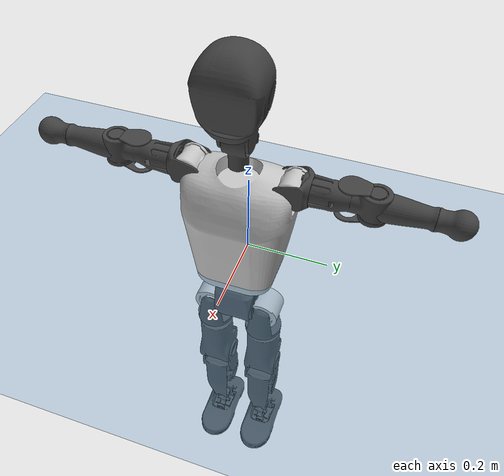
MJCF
<mujoco model="T1">
  <compiler angle="radian" assetdir="assets" balanceinertia="true" inertiafromgeom="false"/>

  <option timestep="0.005" density="1.2" viscosity="2e-05"/>

  <size nkey="1"/>

  <visual>
    <quality shadowsize="8192"/>
    <map shadowclip="0.5"/>
  </visual>

  <default>
    <default class="/">
      <joint armature="0.01" damping="0.01" frictionloss="0.1"/>
      <geom contype="0" conaffinity="0" group="1" solref="-1000 -80"/>
      <site size="0.01 0.005 0.005" group="5"/>
      <general forcelimited="true" biastype="affine" gainprm="25" biasprm="0 -25 -0.6"/>
      <default class="t1">
        <geom rgba="0.25 0.25 0.25 1"/>
        <default class="visual">
          <geom type="mesh" group="2"/>
        </default>
        <default class="collision">
          <geom group="3"/>
        </default>
        <default class="foot">
          <geom size="0.1115 0.05 0.015" type="box" condim="6" group="4" priority="1" solimp="0.015 1 0.015"/>
        </default>
        <default class="reward_collision_sphere">
          <geom group="5" rgba="1 0 0 1"/>
        </default>
      </default>
    </default>
  </default>

  <asset>
    <texture type="skybox" colorspace="auto" name="//unnamed_texture_0" builtin="gradient" rgb1="0.95 0.95 0.95" rgb2="0.95 0.95 0.95" width="100" height="600"/>
    <texture type="2d" colorspace="auto" name="texplane" builtin="checker" rgb1="0.345 0.575 0.748" rgb2="0.345 0.575 0.748" markrgb="1 1 1" width="512" height="512"/>
    <material name="MatPlane" class="/" texture="texplane" texuniform="true" texrepeat="2 2" specular="0.9"/>
    <mesh name="Trunk" class="/" file="Trunk.stl"/>
    <mesh name="H1" class="/" file="H1.stl"/>
    <mesh name="H2" class="/" file="H2.stl"/>
    <mesh name="AL1" class="/" file="AL1.stl"/>
    <mesh name="AL2" class="/" file="AL2.stl"/>
    <mesh name="AL3" class="/" file="AL3.stl"/>
    <mesh name="left_hand_link" class="/" file="left_hand_link.stl"/>
    <mesh name="AR1" class="/" file="AR1.stl"/>
    <mesh name="AR2" class="/" file="AR2.stl"/>
    <mesh name="AR3" class="/" file="AR3.stl"/>
    <mesh name="right_hand_link" class="/" file="right_hand_link.stl"/>
    <mesh name="Waist" class="/" file="Waist.stl"/>
    <mesh name="Hip_Pitch_Left" class="/" file="Hip_Pitch_Left.stl"/>
    <mesh name="Hip_Roll_Left" class="/" file="Hip_Roll_Left.stl"/>
    <mesh name="Hip_Yaw_Left" class="/" file="Hip_Yaw_Left.stl"/>
    <mesh name="Shank_Left" class="/" file="Shank_Left.stl"/>
    <mesh name="Ankle_Cross_Left" class="/" file="Ankle_Cross_Left.stl"/>
    <mesh name="left_foot_link" class="/" file="left_foot_link.stl"/>
    <mesh name="Hip_Pitch_Right" class="/" file="Hip_Pitch_Right.stl"/>
    <mesh name="Hip_Roll_Right" class="/" file="Hip_Roll_Right.stl"/>
    <mesh name="Hip_Yaw_Right" class="/" file="Hip_Yaw_Right.stl"/>
    <mesh name="Shank_Right" class="/" file="Shank_Right.stl"/>
    <mesh name="Ankle_Cross_Right" class="/" file="Ankle_Cross_Right.stl"/>
    <mesh name="right_foot_link" class="/" file="right_foot_link.stl"/>
  </asset>

  <worldbody>
    <geom name="floor" class="/" size="100 100 0.125" type="plane" group="0" material="MatPlane"/>
    <light name="toplight_shadow" class="/" pos="0 0 5" dir="0.0990148 0.0990148 -0.990148" type="directional" ambient="0.04 0.04 0.04" diffuse="0.55 0.55 0.55" specular="0.12 0.12 0.12"/>
    <light name="toplight_fill" class="/" pos="0 0 5" dir="0.0990148 0.0990148 -0.990148" type="directional" castshadow="false" ambient="0.04 0.04 0.04" diffuse="0.3 0.3 0.3" specular="0.08 0.08 0.08"/>
    <body name="trunk" childclass="t1" pos="0.00029612 0.00047149 0.00242421" quat="1 -7.79953e-05 -0.000202236 0.000129784">
      <inertial pos="0.0496333 -0.00353983 0.120436" quat="0.999785 -0.0110702 -0.0174422 0.0018665" mass="8.19998" diaginertia="0.0539753 0.00776405 0.109805"/>
      <joint name="//unnamed_joint_0" type="free" armature="0" damping="0" frictionloss="0"/>
      <geom name="//unnamed_geom_1" class="visual" rgba="0.76 0.76 0.76 1" mesh="Trunk"/>
      <geom name="//unnamed_geom_2" class="collision" size="0.0673494 0.0897993 0.134699" pos="0.0539712 0 0.138449" type="box"/>
      <geom name="//unnamed_geom_3" class="reward_collision_sphere" size="0.103269" pos="0.0539712 0 0.115374"/>
      <geom name="//unnamed_geom_4" class="reward_collision_sphere" size="0.0134699" pos="0.0539712 0.0544608 0"/>
      <geom name="//unnamed_geom_5" class="reward_collision_sphere" size="0.0134699" pos="0.0539712 -0.0544608 0"/>
      <geom name="//unnamed_geom_6" class="reward_collision_sphere" size="0.0134699" pos="0.0539712 0.0685565 0.207674"/>
      <geom name="//unnamed_geom_7" class="reward_collision_sphere" size="0.0134699" pos="0.0539712 -0.0685565 0.207674"/>
      <site name="imu" pos="-0.000438328 0.00873756 -0.0123109" size="0.00897993"/>
      <camera name="track" pos="0 -1.28143 0" quat="0.707107 0.707107 0 0" mode="trackcom"/>
      <camera name="ego_camera" pos="0.109741 0 0.484572" quat="-0.5 -0.5 0.5 0.5"/>
      <body name="H1" pos="0.0553099 -0.00333885 0.278343" quat="1 0.000446019 -0.000343626 0.000742084">
        <inertial pos="-0.000372401 -0.00141516 0.0686717" quat="0.762941 -0.00459621 0.00603158 0.646424" mass="0.30963" diaginertia="0.000134659 2.44782e-05 0.000294354"/>
        <joint name="AAHead_yaw" pos="0 0 0" axis="7.5622e-05 -0.0111797 0.999938" stiffness="0.00256616" range="-1.52029 1.58396" armature="0.00939568" damping="0" frictionloss="0.0772288"/>
        <geom name="//unnamed_geom_8" class="visual" mesh="H1"/>
        <body name="H2" pos="-0.00017528 -0.00126415 0.0716006" quat="1 -5.40191e-06 -2.0544e-06 9.7553e-06">
          <inertial pos="0.00378168 0.00302529 0.116172" quat="0.98921 0.0945411 -0.0721341 -0.0855694" mass="0.457329" diaginertia="0.00119516 0.000202898 0.00357393"/>
          <joint name="Head_pitch" pos="0 0 0" axis="-0.00142774 -0.999927 0.0120243" range="-1.20374 0.341105" armature="0.00847663" damping="0.011095" frictionloss="0.0863584"/>
          <geom name="//unnamed_geom_9" class="visual" mesh="H2"/>
          <geom name="//unnamed_geom_10" class="collision" size="0.0718394" pos="0.00899519 0 0.126912"/>
          <geom name="//unnamed_geom_11" class="reward_collision_sphere" size="0.0808193" pos="0.0179904 0 0.115374"/>
        </body>
      </body>
      <body name="AL1" pos="0.0503301 0.0664952 0.250284" quat="1 0.000596025 0.000384498 9.27242e-05">
        <inertial pos="0.00108997 0.0258869 0.000118543" quat="0.498175 0.496414 -0.506845 0.498501" mass="0.367186" diaginertia="0.000753209 0.000135538 0.000586909"/>
        <joint name="Left_Shoulder_Pitch" pos="0 0 0" axis="-0.00506047 0.999885 -0.0143018" range="-3.28699 1.22751" armature="0.00764625" damping="0" frictionloss="0.077775"/>
        <geom name="//unnamed_geom_12" class="visual" rgba="0.76 0.76 0.76 1" mesh="AL1"/>
        <body name="AL2" pos="-0.00122831 0.0285448 0.000606523" quat="1 0.000133239 -0.000448515 -0.000493041">
          <inertial pos="0.00388618 0.0271141 -0.000374109" quat="0.489341 0.501716 -0.486717 0.521472" mass="0.114849" diaginertia="0.000233035 3.6965e-05 0.000355211"/>
          <joint name="Left_Shoulder_Roll" pos="0 0 0" axis="-0.999976 -0.00635275 0.00268013" range="-1.56594 1.72378" armature="0.0101794" damping="0.0195089" frictionloss="0.0917958"/>
          <geom name="//unnamed_geom_13" class="visual" mesh="AL2"/>
          <body name="AL3" pos="-0.00224712 0.0362144 -0.000174375" quat="1 0.000260446 -0.000113217 -0.000773612">
            <inertial pos="0.000963185 0.0551165 0.00235534" quat="0.706867 0.707346 0.000198092 0.00060882" mass="0.742697" diaginertia="0.00744719 0.00138497 0.00125715"/>
            <joint name="Left_Elbow_Pitch" pos="0 0 0" axis="-0.00334433 -0.999963 0.00795707" stiffness="0.0119303" range="-2.25088 2.2806" armature="0.00987299" damping="0.0108044" frictionloss="0.0923068"/>
            <geom name="//unnamed_geom_14" class="visual" mesh="AL3"/>
            <geom name="//unnamed_geom_15" class="collision" size="0.0269398 0.0673494" pos="0 0.0320357 0" quat="0.707105 0.707108 0 0" type="cylinder"/>
            <geom name="//unnamed_geom_16" class="reward_collision_sphere" size="0.0323277"/>
            <body name="left_hand_link" pos="-0.00242912 0.0966678 -0.00103566" quat="1 -0.00025586 -5.2424e-05 0.00023702">
              <inertial pos="-0.000194322 0.0727675 -0.000661516" quat="0.705961 0.708235 -0.00299616 0.00365352" mass="0.230134" diaginertia="0.00489315 0.000909368 0.000432042"/>
              <joint name="Left_Elbow_Yaw" pos="0 0 0" axis="-0.00924688 0.00477774 0.999946" stiffness="0.0106118" range="-2.49613 0.0124583" armature="0.00808865" damping="0.00304903" frictionloss="0.102334"/>
              <geom name="//unnamed_geom_17" class="visual" mesh="left_hand_link"/>
              <geom name="//unnamed_geom_18" class="collision" size="0.0269398 0.0785744" pos="0 0.0832929 0" quat="0.707105 0.707108 0 0" type="cylinder"/>
              <geom name="//unnamed_geom_19" class="reward_collision_sphere" size="0.0448996"/>
              <geom name="//unnamed_geom_20" class="reward_collision_sphere" size="0.0314297" pos="0 0.0704786 0"/>
              <geom name="//unnamed_geom_21" class="reward_collision_sphere" size="0.0314297" pos="0 0.137754 0"/>
            </body>
          </body>
        </body>
      </body>
      <body name="AR1" pos="0.0501363 -0.0654353 0.250933" quat="1 -0.000147336 0.000388533 5.2818e-05">
        <inertial pos="-0.000403381 -0.0307725 -0.00116198" quat="0.497814 0.500371 -0.505012 0.496762" mass="0.396912" diaginertia="0.000812467 0.000134656 0.000604419"/>
        <joint name="Right_Shoulder_Pitch" pos="0 0 0" axis="-0.00199735 -0.999998 6.60194e-05" range="-1.22379 3.3339" armature="0.00872884" damping="0.019822" frictionloss="0.0855457"/>
        <geom name="//unnamed_geom_22" class="visual" rgba="0.76 0.76 0.76 1" mesh="AR1"/>
        <body name="AR2" pos="0.000135935 -0.0315027 0.000979243" quat="1 -8.40117e-06 -1.99655e-05 4.2172e-05">
          <inertial pos="0.00595122 -0.0238864 4.26099e-07" quat="0.506035 0.496101 -0.511563 0.485918" mass="0.119277" diaginertia="0.000238839 3.65308e-05 0.000371171"/>
          <joint name="Right_Shoulder_Roll" pos="0 0 0" axis="-0.999967 -0.0031696 -0.00742114" range="-1.74152 1.62148" armature="0.00887184" damping="0" frictionloss="0.0994794"/>
          <geom name="//unnamed_geom_23" class="visual" mesh="AR2"/>
          <body name="AR3" pos="-0.00195113 -0.0382508 -0.00335351" quat="0.999999 -0.000713509 -0.000271071 -0.00109793">
            <inertial pos="-0.000762266 -0.0524087 -0.00135527" quat="0.703886 0.710212 -0.00494466 -0.0108462" mass="0.757306" diaginertia="0.00756105 0.00136793 0.00125826"/>
            <joint name="Right_Elbow_Pitch" pos="0 0 0" axis="0.00233298 0.999993 -0.00294432" stiffness="0.00507594" range="-2.31831 2.23062" armature="0.00929809" damping="0.00272862" frictionloss="0.0875166"/>
            <geom name="//unnamed_geom_24" class="visual" mesh="AR3"/>
            <geom name="//unnamed_geom_25" class="collision" size="0.0269398 0.0673494" pos="0 -0.0320357 0" quat="0.707105 0.707108 0 0" type="cylinder"/>
            <geom name="//unnamed_geom_26" class="reward_collision_sphere" size="0.0323277"/>
            <body name="right_hand_link" pos="0.000160317 -0.0951773 -8.84444e-05" quat="1 -8.25102e-05 6.79013e-07 4.36046e-06">
              <inertial pos="-0.000732894 -0.0706476 0.000153589" quat="0.700323 0.713745 -0.0105912 0.00202877" mass="0.227213" diaginertia="0.00461894 0.000847835 0.000421311"/>
              <joint name="Right_Elbow_Yaw" pos="0 0 0" axis="-0.00810583 -0.011932 0.999896" range="0.0457072 2.47437" armature="0.00892895" damping="0.00558661" frictionloss="0.0934071"/>
              <geom name="//unnamed_geom_27" class="visual" mesh="right_hand_link"/>
              <geom name="//unnamed_geom_28" class="collision" size="0.0269398 0.0785744" pos="0 -0.0832929 0" quat="0.707105 0.707108 0 0" type="cylinder"/>
              <geom name="//unnamed_geom_29" class="reward_collision_sphere" size="0.0448996"/>
              <geom name="//unnamed_geom_30" class="reward_collision_sphere" size="0.0314297" pos="0 -0.0704786 0"/>
              <geom name="//unnamed_geom_31" class="reward_collision_sphere" size="0.0314297" pos="0 -0.137754 0"/>
            </body>
          </body>
        </body>
      </body>
      <body name="Waist" pos="0.0568058 -0.00124926 -0.132087" quat="0.999999 0.000915795 -0.00073776 0.000905274">
        <inertial pos="0.00138258 -0.00309359 0.00864379" quat="0.983684 0.000895231 -0.179879 0.00276572" mass="1.9266" diaginertia="0.00317896 0.000571705 0.00942309"/>
        <joint name="Waist" pos="0 0 0" axis="0.00261982 0.0148912 0.999886" stiffness="0.0069395" range="-1.55562 1.57927" armature="0.0098355" damping="0" frictionloss="0.0850392"/>
        <geom name="//unnamed_geom_32" class="visual" mesh="Waist"/>
        <body name="Hip_Pitch_Left" pos="0.00417297 0.0671103 0.00186793" quat="0.999999 0.00039048 0.000500294 0.00105651">
          <inertial pos="-0.000185899 -0.00683727 -0.0215874" quat="0.973588 0.227526 0.0157981 -0.0104228" mass="0.737592" diaginertia="0.00101659 0.000153285 0.00239042"/>
          <joint name="Left_Hip_Pitch" pos="0 0 0" axis="0.00845813 0.999927 0.00863146" stiffness="0.000200826" range="-1.79933 1.60834" armature="0.00820677" damping="0.00727797" frictionloss="0.100556"/>
          <geom name="//unnamed_geom_33" class="visual" rgba="0.76 0.76 0.76 1" mesh="Hip_Pitch_Left"/>
          <body name="Hip_Roll_Left" pos="0.00137062 0.0017297 -0.0205807" quat="1 -1.1161e-06 -3.35894e-06 -2.52036e-06">
            <inertial pos="-0.000333101 -0.00245668 -0.0606299" quat="0.708277 -0.00639862 -0.00596381 0.70588" mass="0.277017" diaginertia="0.0010075 0.000164903 0.00103335"/>
            <joint name="Left_Hip_Roll" pos="0 0 0" axis="-1 3.15557e-06 3.02763e-06" stiffness="0.00172127" range="-1.61829 0.228142" armature="0.00960579" damping="0.0142551" frictionloss="0.0938453"/>
            <geom name="//unnamed_geom_34" class="visual" mesh="Hip_Roll_Left"/>
            <geom name="//unnamed_geom_35" class="reward_collision_sphere" size="0.0493896"/>
            <body name="Hip_Yaw_Left" pos="-0.000420318 0.00193742 -0.0930805" quat="1 -0.000228494 -0.000319918 0.000526595">
              <inertial pos="-0.00566661 -0.00105274 -0.105838" quat="0.697143 -0.0345291 -0.0319224 0.715388" mass="1.56544" diaginertia="0.014435 0.00269575 0.00537822"/>
              <joint name="Left_Hip_Yaw" pos="0 0 0" axis="0.0121229 -0.00118669 -0.999926" stiffness="0.00102795" range="-0.985087 0.986236" armature="0.00886599" damping="0.00239272" frictionloss="0.102025"/>
              <geom name="//unnamed_geom_36" class="visual" mesh="Hip_Yaw_Left"/>
              <geom name="//unnamed_geom_37" class="collision" size="0.0448996 0.0718394" type="cylinder"/>
              <body name="Shank_Left" pos="-0.00856253 0.000590158 -0.155887" quat="1 -0.000237619 0.000214564 -0.000189605">
                <inertial pos="-0.00334745 -0.00175062 -0.144222" quat="0.997604 -0.00150055 -0.0223679 0.0654507" mass="1.22624" diaginertia="0.020212 0.00364979 0.00388111"/>
                <joint name="Left_Knee_Pitch" pos="0 0 0" axis="0.00165731 0.999995 0.00255654" stiffness="0.00998471" range="0.0545808 2.39313" armature="0.00861864" damping="0.0160954" frictionloss="0.0872463"/>
                <geom name="//unnamed_geom_38" class="visual" mesh="Shank_Left"/>
                <geom name="//unnamed_geom_39" class="collision" size="0.0448996 0.0673494" pos="0 0 -0.138449" type="cylinder"/>
                <geom name="//unnamed_geom_40" class="reward_collision_sphere" size="0.0583695"/>
                <body name="Ankle_Cross_Left" pos="-0.00132938 0.000523451 -0.322565" quat="0.999999 0.000521047 -0.000834847 -0.00118262">
                  <inertial pos="-0.000695454 0.00162137 -0.012052" quat="0.442417 0.552163 0.549134 0.444787" mass="0.0524305" diaginertia="1.71906e-05 2.6112e-06 2.25781e-05"/>
                  <joint name="Left_Ankle_Pitch" pos="0 0 0" axis="-0.0160393 0.999859 -0.00495425" stiffness="0.0100427" range="-0.908925 0.389967" armature="0.00864637" damping="0.0226784" frictionloss="0.0781187"/>
                  <geom name="//unnamed_geom_41" class="visual" mesh="Ankle_Cross_Left"/>
                  <body name="left_foot_link" pos="-0.00170216 0.00431792 -0.0162481" quat="1 0.000128248 -6.78724e-05 0.000199043">
                    <inertial pos="0.00189376 0.00222987 -0.00994703" quat="0.00354603 0.623936 -0.0127798 0.781363" mass="0.498" diaginertia="0.00161991 0.000272039 0.00471737"/>
                    <joint name="Left_Ankle_Roll" pos="0 0 0" axis="-0.999878 0.0128595 -0.00883858" stiffness="0.00657113" range="-0.483963 0.461578" armature="0.00911182" damping="0.0101485" frictionloss="0.0994715"/>
                    <geom name="//unnamed_geom_42" class="visual" mesh="left_foot_link"/>
                    <geom name="left_foot" class="foot" size="0.101769 0.0522796 0.0129057" pos="0.00899519 0 -0.0173062"/>
                    <geom name="//unnamed_geom_44" class="reward_collision_sphere" size="0.0466956" pos="0.00899519 0 -0.0173062"/>
                    <geom name="//unnamed_geom_45" class="reward_collision_sphere" size="0.0269398" pos="0.0854543 -0.0147364 -0.0173062"/>
                    <geom name="//unnamed_geom_46" class="reward_collision_sphere" size="0.0269398" pos="-0.0629663 -0.0147364 -0.0173062"/>
                    <site name="left_foot" class="foot" pos="0.00899519 0 -0.0173062" size="0.00897993"/>
                  </body>
                </body>
              </body>
            </body>
          </body>
        </body>
        <body name="Hip_Pitch_Right" pos="0.00202789 -0.0660704 -0.00193016" quat="1 -1.55801e-05 -9.29373e-05 2.70684e-05">
          <inertial pos="-0.00120839 0.00510415 -0.0204748" quat="0.974084 -0.226153 0.000782297 -0.00381675" mass="0.691782" diaginertia="0.00102822 0.000151633 0.00246561"/>
          <joint name="Right_Hip_Pitch" pos="0 0 0" axis="0.011907 -0.999923 -0.00361775" range="-1.55195 1.74051" armature="0.00880415" damping="0.0092098" frictionloss="0.077433"/>
          <geom name="//unnamed_geom_47" class="visual" rgba="0.76 0.76 0.76 1" mesh="Hip_Pitch_Right"/>
          <body name="Hip_Roll_Right" pos="-0.000205179 -0.00239623 -0.0245383" quat="1 -2.12704e-06 6.71944e-07 -6.36493e-07">
            <inertial pos="0.000851813 -0.00128258 -0.0644441" quat="0.703618 -0.00415617 -0.000407032 0.710566" mass="0.280447" diaginertia="0.00102423 0.000162216 0.00105199"/>
            <joint name="Right_Hip_Roll" pos="0 0 0" axis="-0.999962 -0.00404519 -0.00773722" range="-0.183101 1.56792" armature="0.00902365" damping="0.0157735" frictionloss="0.0791425"/>
            <geom name="//unnamed_geom_48" class="visual" mesh="Hip_Roll_Right"/>
            <geom name="//unnamed_geom_49" class="reward_collision_sphere" size="0.0493896"/>
            <body name="Hip_Yaw_Right" pos="0.00263684 0.00258677 -0.0929819" quat="0.999999 -0.00011052 -0.000444269 0.00115358">
              <inertial pos="-0.00598753 -0.000389958 -0.100347" quat="0.713283 -0.0220569 -0.0394002 0.69942" mass="1.62905" diaginertia="0.0151176 0.00272223 0.00521049"/>
              <joint name="Right_Hip_Yaw" pos="0 0 0" axis="-0.016624 0.00298236 -0.999857" stiffness="0.00282693" range="-1.06137 1.04667" armature="0.00864551" damping="0.0202003" frictionloss="0.090742"/>
              <geom name="//unnamed_geom_50" class="visual" mesh="Hip_Yaw_Right"/>
              <geom name="//unnamed_geom_51" class="collision" size="0.0448996 0.0718394" type="cylinder"/>
              <body name="Shank_Right" pos="-0.0131923 0.00279985 -0.155498" quat="1 0.000250998 -0.000619099 -2.26721e-05">
                <inertial pos="-0.00542321 -0.00108188 -0.144334" quat="0.999138 -0.00122368 -0.0266751 -0.0317815" mass="1.27203" diaginertia="0.0202193 0.00356575 0.00390051"/>
                <joint name="Right_Knee_Pitch" pos="0 0 0" axis="0.00195538 -0.999993 0.00333302" range="-2.28518 0.0462668" armature="0.00900392" damping="0.0163902" frictionloss="0.0862252"/>
                <geom name="//unnamed_geom_52" class="visual" mesh="Shank_Right"/>
                <geom name="//unnamed_geom_53" class="collision" size="0.0448996 0.0673494" pos="0 0 -0.138449" type="cylinder"/>
                <geom name="//unnamed_geom_54" class="reward_collision_sphere" size="0.0583695"/>
                <body name="Ankle_Cross_Right" pos="-0.00169492 0.00116595 -0.321599" quat="0.999999 0.000354232 -0.000539188 -0.000879548">
                  <inertial pos="-0.0045817 -0.000162557 -0.0103031" quat="0.445281 0.547581 0.552846 0.442992" mass="0.0521408" diaginertia="1.66881e-05 2.79163e-06 2.2477e-05"/>
                  <joint name="Right_Ankle_Pitch" pos="0 0 0" axis="0.00827656 -0.999957 0.00422952" range="-0.296063 0.913998" armature="0.00905116" damping="0" frictionloss="0.0797526"/>
                  <geom name="//unnamed_geom_55" class="visual" mesh="Ankle_Cross_Right"/>
                  <body name="right_foot_link" pos="0.00147132 -0.00149568 -0.0119575" quat="0.999999 0.000520866 0.000872473 0.000589211">
                    <inertial pos="-0.000103357 -0.00281692 -0.0100477" quat="0.00354158 0.623216 0.0121802 0.781947" mass="0.499939" diaginertia="0.00156103 0.000253452 0.00425464"/>
                    <joint name="Right_Ankle_Roll" pos="0 0 0" axis="-0.999996 -0.000791652 0.00253154" stiffness="0.00910867" range="-0.453238 0.420463" armature="0.0102075" damping="0.00957835" frictionloss="0.0859954"/>
                    <geom name="//unnamed_geom_56" class="visual" mesh="right_foot_link"/>
                    <geom name="right_foot" class="foot" size="0.101379 0.0465664 0.0139068" pos="0.00899519 0 -0.0173062"/>
                    <geom name="//unnamed_geom_58" class="reward_collision_sphere" size="0.0359197"/>
                    <geom name="//unnamed_geom_59" class="reward_collision_sphere" size="0.0269398" pos="0.00899519 0 -0.0173062"/>
                    <geom name="//unnamed_geom_60" class="reward_collision_sphere" size="0.0269398" pos="0.0854543 0.0147364 -0.0173062"/>
                    <geom name="//unnamed_geom_61" class="reward_collision_sphere" size="0.0269398" pos="-0.0629663 0.0147364 -0.0173062"/>
                    <site name="right_foot" class="foot" pos="0.00899519 0 -0.0173062" size="0.00897993"/>
                  </body>
                </body>
              </body>
            </body>
          </body>
        </body>
      </body>
    </body>
  </worldbody>

  <contact>
    <pair class="/" geom1="floor" geom2="left_foot" name="//unnamed_contact_0"/>
    <pair class="/" geom1="floor" geom2="right_foot" name="//unnamed_contact_1"/>
  </contact>

  <actuator>
    <general name="AAHead_yaw" class="/" joint="AAHead_yaw" forcerange="-6.92041 6.92041" gainprm="22.7403" biasprm="0 -22.7403 -0.488981"/>
    <general name="Head_pitch" class="/" joint="Head_pitch" forcerange="-6.88595 6.88595" gainprm="22.7403" biasprm="0 -22.7403 -0.488981"/>
    <general name="Left_Shoulder_Pitch" class="/" joint="Left_Shoulder_Pitch" forcerange="-14.578 14.578" gainprm="22.7403" biasprm="0 -22.7403 -0.488981"/>
    <general name="Left_Shoulder_Roll" class="/" joint="Left_Shoulder_Roll" forcerange="-15.7811 15.7811" gainprm="22.7403" biasprm="0 -22.7403 -0.488981"/>
    <general name="Left_Elbow_Pitch" class="/" joint="Left_Elbow_Pitch" forcerange="-16.9799 16.9799" gainprm="22.7403" biasprm="0 -22.7403 -0.488981"/>
    <general name="Left_Elbow_Yaw" class="/" joint="Left_Elbow_Yaw" forcerange="-14.5476 14.5476" gainprm="22.7403" biasprm="0 -22.7403 -0.488981"/>
    <general name="Right_Shoulder_Pitch" class="/" joint="Right_Shoulder_Pitch" forcerange="-15.7667 15.7667" gainprm="22.7403" biasprm="0 -22.7403 -0.488981"/>
    <general name="Right_Shoulder_Roll" class="/" joint="Right_Shoulder_Roll" forcerange="-16.6886 16.6886" gainprm="22.7403" biasprm="0 -22.7403 -0.488981"/>
    <general name="Right_Elbow_Pitch" class="/" joint="Right_Elbow_Pitch" forcerange="-16.8632 16.8632" gainprm="22.7403" biasprm="0 -22.7403 -0.488981"/>
    <general name="Right_Elbow_Yaw" class="/" joint="Right_Elbow_Yaw" forcerange="-17.6508 17.6508" gainprm="22.7403" biasprm="0 -22.7403 -0.488981"/>
    <general name="Waist" class="/" joint="Waist" forcerange="-26.3972 26.3972" gainprm="22.7403" biasprm="0 -22.7403 -0.488981"/>
    <general name="Left_Hip_Pitch" class="/" joint="Left_Hip_Pitch" forcerange="-37.1773 37.1773" gainprm="22.7403" biasprm="0 -22.7403 -0.488981"/>
    <general name="Left_Hip_Roll" class="/" joint="Left_Hip_Roll" forcerange="-28.5496 28.5496" gainprm="22.7403" biasprm="0 -22.7403 -0.488981"/>
    <general name="Left_Hip_Yaw" class="/" joint="Left_Hip_Yaw" forcerange="-26.672 26.672" gainprm="22.7403" biasprm="0 -22.7403 -0.488981"/>
    <general name="Left_Knee_Pitch" class="/" joint="Left_Knee_Pitch" forcerange="-58.484 58.484" gainprm="22.7403" biasprm="0 -22.7403 -0.488981"/>
    <general name="Left_Ankle_Pitch" class="/" joint="Left_Ankle_Pitch" forcerange="-18.2422 18.2422" gainprm="22.7403" biasprm="0 -22.7403 -0.488981"/>
    <general name="Left_Ankle_Roll" class="/" joint="Left_Ankle_Roll" forcerange="-13.989 13.989" gainprm="22.7403" biasprm="0 -22.7403 -0.488981"/>
    <general name="Right_Hip_Pitch" class="/" joint="Right_Hip_Pitch" forcerange="-40.4147 40.4147" gainprm="22.7403" biasprm="0 -22.7403 -0.488981"/>
    <general name="Right_Hip_Roll" class="/" joint="Right_Hip_Roll" forcerange="-24.0659 24.0659" gainprm="22.7403" biasprm="0 -22.7403 -0.488981"/>
    <general name="Right_Hip_Yaw" class="/" joint="Right_Hip_Yaw" forcerange="-24.1418 24.1418" gainprm="22.7403" biasprm="0 -22.7403 -0.488981"/>
    <general name="Right_Knee_Pitch" class="/" joint="Right_Knee_Pitch" forcerange="-57.7676 57.7676" gainprm="22.7403" biasprm="0 -22.7403 -0.488981"/>
    <general name="Right_Ankle_Pitch" class="/" joint="Right_Ankle_Pitch" forcerange="-19.8828 19.8828" gainprm="22.7403" biasprm="0 -22.7403 -0.488981"/>
    <general name="Right_Ankle_Roll" class="/" joint="Right_Ankle_Roll" forcerange="-12.9189 12.9189" gainprm="22.7403" biasprm="0 -22.7403 -0.488981"/>
  </actuator>

  <sensor>
    <gyro site="imu" name="imu_angular_velocity"/>
    <velocimeter site="imu" name="imu_linear_velocity"/>
    <framelinvel objtype="site" objname="left_foot" name="left_foot_global_linear_velocity"/>
    <framelinvel objtype="site" objname="right_foot" name="right_foot_global_linear_velocity"/>
  </sensor>

  <keyframe>
    <key name="home" qpos="0 0 0.6385 1 0 0 0 0 0 0 1.4 0 -0.4 0 -1.4 0 0.4 0 -0.4 0 0 0.8 -0.4 0 0.4 0 0 -0.8 0.4 0"/>
  </keyframe>
</mujoco>
